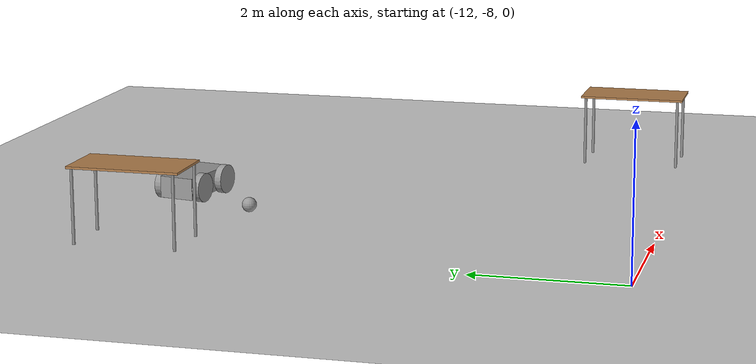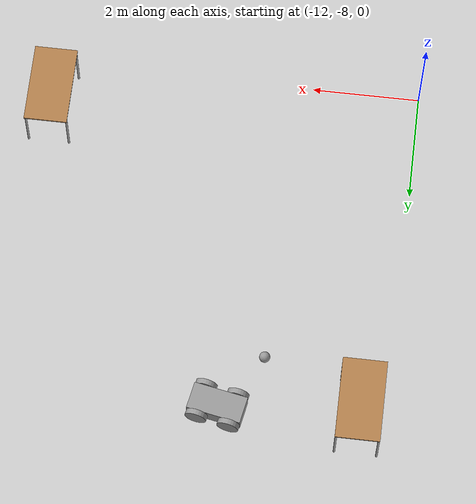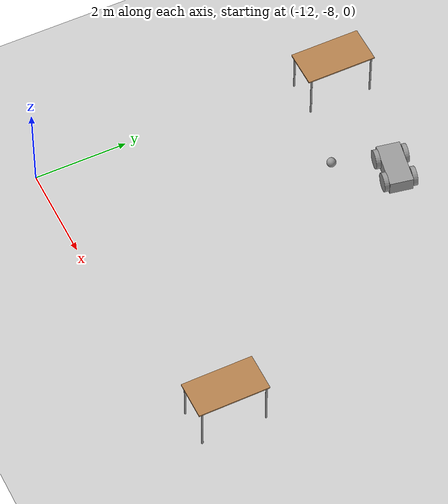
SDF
<sdf version="1.6">
 <world name="default">
  <model name="ground_plane">
   <static>1</static>
   <link name="link">
    <collision name="collision">
     <geometry><plane><normal>0 0 1</normal><size>100 100</size></plane></geometry>
     <surface><friction><ode><mu>100</mu><mu2>50</mu2></ode></friction></surface>
    </collision>
    <visual name="visual">
     <cast_shadows>0</cast_shadows>
     <geometry><plane><normal>0 0 1</normal><size>100 100</size></plane></geometry>
     <material>
      <script><uri>file://media/materials/scripts/gazebo.material</uri><name>Gazebo/Grey</name></script>
     </material>
    </visual>
   </link>
  </model>
  <model name="robot">
   <link name="link_0">
    <pose>0 0 1e-06 0 -0 0</pose>
    <inertial>
     <mass>1</mass>
     <inertia>
      <ixx>0.166667</ixx>
      <ixy>0</ixy>
      <ixz>0</ixz>
      <iyy>0.166667</iyy>
      <iyz>0</iyz>
      <izz>0.166667</izz>
     </inertia>
    </inertial>
    <visual name="visual">
     <geometry><box><size>1 0.5 0.3</size></box></geometry>
     <material>
      <lighting>1</lighting>
      <script><uri>file://media/materials/scripts/gazebo.material</uri><name>Gazebo/Grey</name></script>
      <shader type="pixel"><normal_map>__default__</normal_map></shader>
      <ambient>0.3 0.3 0.3 1</ambient>
      <diffuse>0.7 0.7 0.7 1</diffuse>
      <specular>0.01 0.01 0.01 1</specular>
      <emissive>0 0 0 1</emissive>
     </material>
    </visual>
    <collision name="collision">
     <geometry><box><size>1 0.5 0.3</size></box></geometry>
     <surface>
      <friction>
       <ode><mu>1</mu><mu2>1</mu2><fdir1>0 0 0</fdir1><slip1>0</slip1><slip2>0</slip2></ode>
       <torsional>
        <coefficient>1</coefficient>
        <patch_radius>0</patch_radius>
        <surface_radius>0</surface_radius>
        <use_patch_radius>1</use_patch_radius>
        <ode><slip>0</slip></ode>
       </torsional>
      </friction>
      <bounce><restitution_coefficient>0</restitution_coefficient><threshold>1e+06</threshold></bounce>
      <contact>
       <collide_without_contact>0</collide_without_contact>
       <collide_without_contact_bitmask>1</collide_without_contact_bitmask>
       <collide_bitmask>1</collide_bitmask>
       <ode>
        <soft_cfm>0</soft_cfm>
        <soft_erp>0.2</soft_erp>
        <kp>1e+13</kp>
        <kd>1</kd>
        <max_vel>0.01</max_vel>
        <min_depth>0</min_depth>
       </ode>
       <bullet>
        <split_impulse>1</split_impulse>
        <split_impulse_penetration_threshold>-0.01</split_impulse_penetration_threshold>
        <soft_cfm>0</soft_cfm>
        <soft_erp>0.2</soft_erp>
        <kp>1e+13</kp>
        <kd>1</kd>
       </bullet>
      </contact>
     </surface>
    </collision>
   </link>
   <link name="link_1">
    <pose>-0.3 -0.300019 -4e-06 1.5707 -0 0</pose>
    <inertial>
     <mass>1</mass>
     <inertia><ixx>0.145833</ixx><ixy>0</ixy><ixz>0</ixz><iyy>0.145833</iyy><iyz>0</iyz><izz>0.125</izz></inertia>
    </inertial>
    <visual name="visual">
     <geometry><cylinder><radius>0.2</radius><length>0.1</length></cylinder></geometry>
     <material>
      <lighting>1</lighting>
      <script><uri>file://media/materials/scripts/gazebo.material</uri><name>Gazebo/Grey</name></script>
      <shader type="pixel"><normal_map>__default__</normal_map></shader>
      <ambient>0.3 0.3 0.3 1</ambient>
      <diffuse>0.7 0.7 0.7 1</diffuse>
      <specular>0.01 0.01 0.01 1</specular>
      <emissive>0 0 0 1</emissive>
     </material>
    </visual>
    <collision name="collision">
     <geometry><cylinder><radius>0.2</radius><length>0.1</length></cylinder></geometry>
     <surface>
      <friction>
       <ode><mu>1</mu><mu2>1</mu2><fdir1>0 0 0</fdir1><slip1>0</slip1><slip2>0</slip2></ode>
       <torsional>
        <coefficient>1</coefficient>
        <patch_radius>0</patch_radius>
        <surface_radius>0</surface_radius>
        <use_patch_radius>1</use_patch_radius>
        <ode><slip>0</slip></ode>
       </torsional>
      </friction>
      <bounce><restitution_coefficient>0</restitution_coefficient><threshold>1e+06</threshold></bounce>
      <contact>
       <collide_without_contact>0</collide_without_contact>
       <collide_without_contact_bitmask>1</collide_without_contact_bitmask>
       <collide_bitmask>1</collide_bitmask>
       <ode>
        <soft_cfm>0</soft_cfm>
        <soft_erp>0.2</soft_erp>
        <kp>1e+13</kp>
        <kd>1</kd>
        <max_vel>0.01</max_vel>
        <min_depth>0</min_depth>
       </ode>
       <bullet>
        <split_impulse>1</split_impulse>
        <split_impulse_penetration_threshold>-0.01</split_impulse_penetration_threshold>
        <soft_cfm>0</soft_cfm>
        <soft_erp>0.2</soft_erp>
        <kp>1e+13</kp>
        <kd>1</kd>
       </bullet>
      </contact>
     </surface>
    </collision>
   </link>
   <link name="link_1_clone">
    <pose>-0.3 0.300019 1e-06 1.5707 -0 0</pose>
    <inertial>
     <mass>1</mass>
     <inertia><ixx>0.145833</ixx><ixy>0</ixy><ixz>0</ixz><iyy>0.145833</iyy><iyz>0</iyz><izz>0.125</izz></inertia>
    </inertial>
    <visual name="visual">
     <geometry><cylinder><radius>0.2</radius><length>0.1</length></cylinder></geometry>
     <material>
      <lighting>1</lighting>
      <script><uri>file://media/materials/scripts/gazebo.material</uri><name>Gazebo/Grey</name></script>
      <shader type="pixel"><normal_map>__default__</normal_map></shader>
      <ambient>0.3 0.3 0.3 1</ambient>
      <diffuse>0.7 0.7 0.7 1</diffuse>
      <specular>0.01 0.01 0.01 1</specular>
      <emissive>0 0 0 1</emissive>
     </material>
    </visual>
    <collision name="collision">
     <geometry><cylinder><radius>0.2</radius><length>0.1</length></cylinder></geometry>
     <surface>
      <friction>
       <ode><mu>1</mu><mu2>1</mu2><fdir1>0 0 0</fdir1><slip1>0</slip1><slip2>0</slip2></ode>
       <torsional>
        <coefficient>1</coefficient>
        <patch_radius>0</patch_radius>
        <surface_radius>0</surface_radius>
        <use_patch_radius>1</use_patch_radius>
        <ode><slip>0</slip></ode>
       </torsional>
      </friction>
      <bounce><restitution_coefficient>0</restitution_coefficient><threshold>1e+06</threshold></bounce>
      <contact>
       <collide_without_contact>0</collide_without_contact>
       <collide_without_contact_bitmask>1</collide_without_contact_bitmask>
       <collide_bitmask>1</collide_bitmask>
       <ode>
        <soft_cfm>0</soft_cfm>
        <soft_erp>0.2</soft_erp>
        <kp>1e+13</kp>
        <kd>1</kd>
        <max_vel>0.01</max_vel>
        <min_depth>0</min_depth>
       </ode>
       <bullet>
        <split_impulse>1</split_impulse>
        <split_impulse_penetration_threshold>-0.01</split_impulse_penetration_threshold>
        <soft_cfm>0</soft_cfm>
        <soft_erp>0.2</soft_erp>
        <kp>1e+13</kp>
        <kd>1</kd>
       </bullet>
      </contact>
     </surface>
    </collision>
   </link>
   <link name="link_1_clone_0">
    <pose>0.3 0.300019 1e-06 1.5707 -0 0</pose>
    <inertial>
     <mass>1</mass>
     <inertia><ixx>0.145833</ixx><ixy>0</ixy><ixz>0</ixz><iyy>0.145833</iyy><iyz>0</iyz><izz>0.125</izz></inertia>
    </inertial>
    <visual name="visual">
     <geometry><cylinder><radius>0.2</radius><length>0.1</length></cylinder></geometry>
     <material>
      <lighting>1</lighting>
      <script><uri>file://media/materials/scripts/gazebo.material</uri><name>Gazebo/Grey</name></script>
      <shader type="pixel"><normal_map>__default__</normal_map></shader>
      <ambient>0.3 0.3 0.3 1</ambient>
      <diffuse>0.7 0.7 0.7 1</diffuse>
      <specular>0.01 0.01 0.01 1</specular>
      <emissive>0 0 0 1</emissive>
     </material>
    </visual>
    <collision name="collision">
     <geometry><cylinder><radius>0.2</radius><length>0.1</length></cylinder></geometry>
     <surface>
      <friction>
       <ode><mu>1</mu><mu2>1</mu2><fdir1>0 0 0</fdir1><slip1>0</slip1><slip2>0</slip2></ode>
       <torsional>
        <coefficient>1</coefficient>
        <patch_radius>0</patch_radius>
        <surface_radius>0</surface_radius>
        <use_patch_radius>1</use_patch_radius>
        <ode><slip>0</slip></ode>
       </torsional>
      </friction>
      <bounce><restitution_coefficient>0</restitution_coefficient><threshold>1e+06</threshold></bounce>
      <contact>
       <collide_without_contact>0</collide_without_contact>
       <collide_without_contact_bitmask>1</collide_without_contact_bitmask>
       <collide_bitmask>1</collide_bitmask>
       <ode>
        <soft_cfm>0</soft_cfm>
        <soft_erp>0.2</soft_erp>
        <kp>1e+13</kp>
        <kd>1</kd>
        <max_vel>0.01</max_vel>
        <min_depth>0</min_depth>
       </ode>
       <bullet>
        <split_impulse>1</split_impulse>
        <split_impulse_penetration_threshold>-0.01</split_impulse_penetration_threshold>
        <soft_cfm>0</soft_cfm>
        <soft_erp>0.2</soft_erp>
        <kp>1e+13</kp>
        <kd>1</kd>
       </bullet>
      </contact>
     </surface>
    </collision>
   </link>
   <link name="link_1_clone_1">
    <pose>0.3 -0.300019 1e-06 1.5707 -0 0</pose>
    <inertial>
     <mass>1</mass>
     <inertia><ixx>0.145833</ixx><ixy>0</ixy><ixz>0</ixz><iyy>0.145833</iyy><iyz>0</iyz><izz>0.125</izz></inertia>
    </inertial>
    <visual name="visual">
     <geometry><cylinder><radius>0.2</radius><length>0.1</length></cylinder></geometry>
     <material>
      <lighting>1</lighting>
      <script><uri>file://media/materials/scripts/gazebo.material</uri><name>Gazebo/Grey</name></script>
      <shader type="pixel"><normal_map>__default__</normal_map></shader>
      <ambient>0.3 0.3 0.3 1</ambient>
      <diffuse>0.7 0.7 0.7 1</diffuse>
      <specular>0.01 0.01 0.01 1</specular>
      <emissive>0 0 0 1</emissive>
     </material>
    </visual>
    <collision name="collision">
     <geometry><cylinder><radius>0.2</radius><length>0.1</length></cylinder></geometry>
     <surface>
      <friction>
       <ode><mu>1</mu><mu2>1</mu2><fdir1>0 0 0</fdir1><slip1>0</slip1><slip2>0</slip2></ode>
       <torsional>
        <coefficient>1</coefficient>
        <patch_radius>0</patch_radius>
        <surface_radius>0</surface_radius>
        <use_patch_radius>1</use_patch_radius>
        <ode><slip>0</slip></ode>
       </torsional>
      </friction>
      <bounce><restitution_coefficient>0</restitution_coefficient><threshold>1e+06</threshold></bounce>
      <contact>
       <collide_without_contact>0</collide_without_contact>
       <collide_without_contact_bitmask>1</collide_without_contact_bitmask>
       <collide_bitmask>1</collide_bitmask>
       <ode>
        <soft_cfm>0</soft_cfm>
        <soft_erp>0.2</soft_erp>
        <kp>1e+13</kp>
        <kd>1</kd>
        <max_vel>0.01</max_vel>
        <min_depth>0</min_depth>
       </ode>
       <bullet>
        <split_impulse>1</split_impulse>
        <split_impulse_penetration_threshold>-0.01</split_impulse_penetration_threshold>
        <soft_cfm>0</soft_cfm>
        <soft_erp>0.2</soft_erp>
        <kp>1e+13</kp>
        <kd>1</kd>
       </bullet>
      </contact>
     </surface>
    </collision>
   </link>
   <joint name="link_0_JOINT_1" type="revolute">
    <parent>link_0</parent>
    <child>link_1_clone</child>
    <axis>
     <xyz>0 0 1</xyz>
     <use_parent_model_frame>0</use_parent_model_frame>
     <limit>
      <lower>-1.79769e+308</lower>
      <upper>1.79769e+308</upper>
      <effort>-1</effort>
      <velocity>-1</velocity>
     </limit>
     <dynamics>
      <spring_reference>0</spring_reference>
      <spring_stiffness>0</spring_stiffness>
      <damping>0</damping>
     </dynamics>
    </axis>
    <physics>
     <ode><limit><cfm>0</cfm><erp>0.2</erp></limit><suspension><cfm>0</cfm><erp>0.2</erp></suspension></ode>
    </physics>
   </joint>
   <joint name="link_0_JOINT_2" type="revolute">
    <parent>link_0</parent>
    <child>link_1</child>
    <axis>
     <xyz>0 0 1</xyz>
     <use_parent_model_frame>0</use_parent_model_frame>
     <limit>
      <lower>-1.79769e+308</lower>
      <upper>1.79769e+308</upper>
      <effort>-1</effort>
      <velocity>-1</velocity>
     </limit>
     <dynamics>
      <spring_reference>0</spring_reference>
      <spring_stiffness>0</spring_stiffness>
      <damping>0</damping>
     </dynamics>
    </axis>
    <physics>
     <ode><limit><cfm>0</cfm><erp>0.2</erp></limit><suspension><cfm>0</cfm><erp>0.2</erp></suspension></ode>
    </physics>
   </joint>
   <joint name="link_0_JOINT_3" type="revolute">
    <parent>link_0</parent>
    <child>link_1_clone_1</child>
    <axis>
     <xyz>0 0 1</xyz>
     <use_parent_model_frame>0</use_parent_model_frame>
     <limit>
      <lower>-1.79769e+308</lower>
      <upper>1.79769e+308</upper>
      <effort>-1</effort>
      <velocity>-1</velocity>
     </limit>
     <dynamics>
      <spring_reference>0</spring_reference>
      <spring_stiffness>0</spring_stiffness>
      <damping>0</damping>
     </dynamics>
    </axis>
    <physics>
     <ode><limit><cfm>0</cfm><erp>0.2</erp></limit><suspension><cfm>0</cfm><erp>0.2</erp></suspension></ode>
    </physics>
   </joint>
   <joint name="link_0_JOINT_4" type="revolute">
    <parent>link_0</parent>
    <child>link_1</child>
    <axis>
     <xyz>0 0 1</xyz>
     <use_parent_model_frame>0</use_parent_model_frame>
     <limit>
      <lower>-1.79769e+308</lower>
      <upper>1.79769e+308</upper>
      <effort>-1</effort>
      <velocity>-1</velocity>
     </limit>
     <dynamics>
      <spring_reference>0</spring_reference>
      <spring_stiffness>0</spring_stiffness>
      <damping>0</damping>
     </dynamics>
    </axis>
    <physics>
     <ode><limit><cfm>0</cfm><erp>0.2</erp></limit><suspension><cfm>0</cfm><erp>0.2</erp></suspension></ode>
    </physics>
   </joint>
   <joint name="link_0_JOINT_5" type="revolute">
    <parent>link_0</parent>
    <child>link_1_clone_1</child>
    <axis>
     <xyz>0 0 1</xyz>
     <use_parent_model_frame>0</use_parent_model_frame>
     <limit>
      <lower>-1.79769e+308</lower>
      <upper>1.79769e+308</upper>
      <effort>-1</effort>
      <velocity>-1</velocity>
     </limit>
     <dynamics>
      <spring_reference>0</spring_reference>
      <spring_stiffness>0</spring_stiffness>
      <damping>0</damping>
     </dynamics>
    </axis>
    <physics>
     <ode><limit><cfm>0</cfm><erp>0.2</erp></limit><suspension><cfm>0</cfm><erp>0.2</erp></suspension></ode>
    </physics>
   </joint>
   <joint name="link_0_JOINT_6" type="revolute">
    <parent>link_0</parent>
    <child>link_1_clone</child>
    <axis>
     <xyz>0 0 1</xyz>
     <use_parent_model_frame>0</use_parent_model_frame>
     <limit>
      <lower>-1.79769e+308</lower>
      <upper>1.79769e+308</upper>
      <effort>-1</effort>
      <velocity>-1</velocity>
     </limit>
     <dynamics>
      <spring_reference>0</spring_reference>
      <spring_stiffness>0</spring_stiffness>
      <damping>0</damping>
     </dynamics>
    </axis>
    <physics>
     <ode><limit><cfm>0</cfm><erp>0.2</erp></limit><suspension><cfm>0</cfm><erp>0.2</erp></suspension></ode>
    </physics>
   </joint>
   <joint name="link_0_JOINT_7" type="revolute">
    <parent>link_0</parent>
    <child>link_1_clone_0</child>
    <axis>
     <xyz>0 0 1</xyz>
     <use_parent_model_frame>0</use_parent_model_frame>
     <limit>
      <lower>-1.79769e+308</lower>
      <upper>1.79769e+308</upper>
      <effort>-1</effort>
      <velocity>-1</velocity>
     </limit>
     <dynamics>
      <spring_reference>0</spring_reference>
      <spring_stiffness>0</spring_stiffness>
      <damping>0</damping>
     </dynamics>
    </axis>
    <physics>
     <ode><limit><cfm>0</cfm><erp>0.2</erp></limit><suspension><cfm>0</cfm><erp>0.2</erp></suspension></ode>
    </physics>
   </joint>
   <static>0</static>
   <pose>-8.92948 -1.41824 0.200006 -0 9e-06 -0.188568</pose>
  </model>
  <model name="table_clone_0">
   <link name="link">
    <pose>0 0 0 0 -0 1.5707</pose>
    <inertial>
     <mass>1</mass>
     <inertia><ixx>1</ixx><ixy>0</ixy><ixz>0</ixz><iyy>1</iyy><iyz>0</iyz><izz>1</izz></inertia>
    </inertial>
    <visual name="back_right_leg">
     <pose>-0.68 -0.38 0.5 0 -0 0</pose>
     <geometry><cylinder><radius>0.02</radius><length>1</length></cylinder></geometry>
     <material>
      <script><uri>file://media/materials/scripts/gazebo.material</uri><name>Gazebo/Grey</name></script>
      <shader type="pixel"><normal_map>__default__</normal_map></shader>
      <ambient>0.3 0.3 0.3 1</ambient>
      <diffuse>0.7 0.7 0.7 1</diffuse>
      <specular>0.01 0.01 0.01 1</specular>
      <emissive>0 0 0 1</emissive>
     </material>
    </visual>
    <visual name="front_left_leg">
     <pose>0.68 0.38 0.5 0 -0 0</pose>
     <geometry><cylinder><radius>0.02</radius><length>1</length></cylinder></geometry>
     <material>
      <script><uri>file://media/materials/scripts/gazebo.material</uri><name>Gazebo/Grey</name></script>
      <shader type="pixel"><normal_map>__default__</normal_map></shader>
      <ambient>0.3 0.3 0.3 1</ambient>
      <diffuse>0.7 0.7 0.7 1</diffuse>
      <specular>0.01 0.01 0.01 1</specular>
      <emissive>0 0 0 1</emissive>
     </material>
    </visual>
    <visual name="visual1">
     <pose>0 0 1 0 -0 0</pose>
     <geometry><box><size>1.5 0.8 0.03</size></box></geometry>
     <material>
      <script><uri>file://media/materials/scripts/gazebo.material</uri><name>Gazebo/Wood</name></script>
      <shader type="pixel"><normal_map>__default__</normal_map></shader>
      <ambient>1 1 1 1</ambient>
      <diffuse>1 1 1 1</diffuse>
      <specular>0.2 0.2 0.2 1</specular>
      <emissive>0 0 0 1</emissive>
     </material>
    </visual>
    <visual name="back_left_leg">
     <pose>-0.68 0.38 0.5 0 -0 0</pose>
     <geometry><cylinder><radius>0.02</radius><length>1</length></cylinder></geometry>
     <material>
      <script><uri>file://media/materials/scripts/gazebo.material</uri><name>Gazebo/Grey</name></script>
      <shader type="pixel"><normal_map>__default__</normal_map></shader>
      <ambient>0.3 0.3 0.3 1</ambient>
      <diffuse>0.7 0.7 0.7 1</diffuse>
      <specular>0.01 0.01 0.01 1</specular>
      <emissive>0 0 0 1</emissive>
     </material>
    </visual>
    <visual name="front_right_leg">
     <pose>0.68 -0.38 0.5 0 -0 0</pose>
     <geometry><cylinder><radius>0.02</radius><length>1</length></cylinder></geometry>
     <material>
      <script><uri>file://media/materials/scripts/gazebo.material</uri><name>Gazebo/Grey</name></script>
      <shader type="pixel"><normal_map>__default__</normal_map></shader>
      <ambient>0.3 0.3 0.3 1</ambient>
      <diffuse>0.7 0.7 0.7 1</diffuse>
      <specular>0.01 0.01 0.01 1</specular>
      <emissive>0 0 0 1</emissive>
     </material>
    </visual>
    <collision name="front_right_leg">
     <pose>0.68 -0.38 0.5 0 -0 0</pose>
     <geometry><cylinder><radius>0.02</radius><length>1</length></cylinder></geometry>
     <surface>
      <friction>
       <ode><mu>1</mu><mu2>1</mu2><fdir1>0 0 0</fdir1><slip1>0</slip1><slip2>0</slip2></ode>
       <torsional>
        <coefficient>1</coefficient>
        <patch_radius>0</patch_radius>
        <surface_radius>0</surface_radius>
        <use_patch_radius>1</use_patch_radius>
        <ode><slip>0</slip></ode>
       </torsional>
      </friction>
      <bounce><restitution_coefficient>0</restitution_coefficient><threshold>1e+06</threshold></bounce>
      <contact>
       <collide_without_contact>0</collide_without_contact>
       <collide_without_contact_bitmask>1</collide_without_contact_bitmask>
       <collide_bitmask>1</collide_bitmask>
       <ode>
        <soft_cfm>0</soft_cfm>
        <soft_erp>0.2</soft_erp>
        <kp>1e+13</kp>
        <kd>1</kd>
        <max_vel>0.01</max_vel>
        <min_depth>0</min_depth>
       </ode>
       <bullet>
        <split_impulse>1</split_impulse>
        <split_impulse_penetration_threshold>-0.01</split_impulse_penetration_threshold>
        <soft_cfm>0</soft_cfm>
        <soft_erp>0.2</soft_erp>
        <kp>1e+13</kp>
        <kd>1</kd>
       </bullet>
      </contact>
     </surface>
    </collision>
    <collision name="surface">
     <pose>0 0 1 0 -0 0</pose>
     <geometry><box><size>1.5 0.8 0.03</size></box></geometry>
     <surface>
      <friction>
       <ode><mu>0.6</mu><mu2>0.6</mu2><fdir1>0 0 0</fdir1><slip1>0</slip1><slip2>0</slip2></ode>
       <torsional>
        <coefficient>1</coefficient>
        <patch_radius>0</patch_radius>
        <surface_radius>0</surface_radius>
        <use_patch_radius>1</use_patch_radius>
        <ode><slip>0</slip></ode>
       </torsional>
      </friction>
      <bounce><restitution_coefficient>0</restitution_coefficient><threshold>1e+06</threshold></bounce>
      <contact>
       <collide_without_contact>0</collide_without_contact>
       <collide_without_contact_bitmask>1</collide_without_contact_bitmask>
       <collide_bitmask>1</collide_bitmask>
       <ode>
        <soft_cfm>0</soft_cfm>
        <soft_erp>0.2</soft_erp>
        <kp>1e+13</kp>
        <kd>1</kd>
        <max_vel>0.01</max_vel>
        <min_depth>0</min_depth>
       </ode>
       <bullet>
        <split_impulse>1</split_impulse>
        <split_impulse_penetration_threshold>-0.01</split_impulse_penetration_threshold>
        <soft_cfm>0</soft_cfm>
        <soft_erp>0.2</soft_erp>
        <kp>1e+13</kp>
        <kd>1</kd>
       </bullet>
      </contact>
     </surface>
    </collision>
    <collision name="front_left_leg">
     <pose>0.68 0.38 0.5 0 -0 0</pose>
     <geometry><cylinder><radius>0.02</radius><length>1</length></cylinder></geometry>
     <surface>
      <friction>
       <ode><mu>1</mu><mu2>1</mu2><fdir1>0 0 0</fdir1><slip1>0</slip1><slip2>0</slip2></ode>
       <torsional>
        <coefficient>1</coefficient>
        <patch_radius>0</patch_radius>
        <surface_radius>0</surface_radius>
        <use_patch_radius>1</use_patch_radius>
        <ode><slip>0</slip></ode>
       </torsional>
      </friction>
      <bounce><restitution_coefficient>0</restitution_coefficient><threshold>1e+06</threshold></bounce>
      <contact>
       <collide_without_contact>0</collide_without_contact>
       <collide_without_contact_bitmask>1</collide_without_contact_bitmask>
       <collide_bitmask>1</collide_bitmask>
       <ode>
        <soft_cfm>0</soft_cfm>
        <soft_erp>0.2</soft_erp>
        <kp>1e+13</kp>
        <kd>1</kd>
        <max_vel>0.01</max_vel>
        <min_depth>0</min_depth>
       </ode>
       <bullet>
        <split_impulse>1</split_impulse>
        <split_impulse_penetration_threshold>-0.01</split_impulse_penetration_threshold>
        <soft_cfm>0</soft_cfm>
        <soft_erp>0.2</soft_erp>
        <kp>1e+13</kp>
        <kd>1</kd>
       </bullet>
      </contact>
     </surface>
    </collision>
    <collision name="back_left_leg">
     <pose>-0.68 0.38 0.5 0 -0 0</pose>
     <geometry><cylinder><radius>0.02</radius><length>1</length></cylinder></geometry>
     <surface>
      <friction>
       <ode><mu>1</mu><mu2>1</mu2><fdir1>0 0 0</fdir1><slip1>0</slip1><slip2>0</slip2></ode>
       <torsional>
        <coefficient>1</coefficient>
        <patch_radius>0</patch_radius>
        <surface_radius>0</surface_radius>
        <use_patch_radius>1</use_patch_radius>
        <ode><slip>0</slip></ode>
       </torsional>
      </friction>
      <bounce><restitution_coefficient>0</restitution_coefficient><threshold>1e+06</threshold></bounce>
      <contact>
       <collide_without_contact>0</collide_without_contact>
       <collide_without_contact_bitmask>1</collide_without_contact_bitmask>
       <collide_bitmask>1</collide_bitmask>
       <ode>
        <soft_cfm>0</soft_cfm>
        <soft_erp>0.2</soft_erp>
        <kp>1e+13</kp>
        <kd>1</kd>
        <max_vel>0.01</max_vel>
        <min_depth>0</min_depth>
       </ode>
       <bullet>
        <split_impulse>1</split_impulse>
        <split_impulse_penetration_threshold>-0.01</split_impulse_penetration_threshold>
        <soft_cfm>0</soft_cfm>
        <soft_erp>0.2</soft_erp>
        <kp>1e+13</kp>
        <kd>1</kd>
       </bullet>
      </contact>
     </surface>
    </collision>
    <collision name="back_right_leg">
     <pose>-0.68 -0.38 0.5 0 -0 0</pose>
     <geometry><cylinder><radius>0.02</radius><length>1</length></cylinder></geometry>
     <surface>
      <friction>
       <ode><mu>1</mu><mu2>1</mu2><fdir1>0 0 0</fdir1><slip1>0</slip1><slip2>0</slip2></ode>
       <torsional>
        <coefficient>1</coefficient>
        <patch_radius>0</patch_radius>
        <surface_radius>0</surface_radius>
        <use_patch_radius>1</use_patch_radius>
        <ode><slip>0</slip></ode>
       </torsional>
      </friction>
      <bounce><restitution_coefficient>0</restitution_coefficient><threshold>1e+06</threshold></bounce>
      <contact>
       <collide_without_contact>0</collide_without_contact>
       <collide_without_contact_bitmask>1</collide_without_contact_bitmask>
       <collide_bitmask>1</collide_bitmask>
       <ode>
        <soft_cfm>0</soft_cfm>
        <soft_erp>0.2</soft_erp>
        <kp>1e+13</kp>
        <kd>1</kd>
        <max_vel>0.01</max_vel>
        <min_depth>0</min_depth>
       </ode>
       <bullet>
        <split_impulse>1</split_impulse>
        <split_impulse_penetration_threshold>-0.01</split_impulse_penetration_threshold>
        <soft_cfm>0</soft_cfm>
        <soft_erp>0.2</soft_erp>
        <kp>1e+13</kp>
        <kd>1</kd>
       </bullet>
      </contact>
     </surface>
    </collision>
   </link>
   <static>1</static>
   <pose>-5.15446 -7.04814 0 0 -0 0</pose>
  </model>
  <model name="table_clone_0_clone_0">
   <link name="link">
    <pose>0 0 0 0 -0 1.5707</pose>
    <inertial>
     <mass>1</mass>
     <inertia><ixx>1</ixx><ixy>0</ixy><ixz>0</ixz><iyy>1</iyy><iyz>0</iyz><izz>1</izz></inertia>
    </inertial>
    <visual name="back_right_leg">
     <pose>-0.68 -0.38 0.5 0 -0 0</pose>
     <geometry><cylinder><radius>0.02</radius><length>1</length></cylinder></geometry>
     <material>
      <script><uri>file://media/materials/scripts/gazebo.material</uri><name>Gazebo/Grey</name></script>
      <shader type="pixel"><normal_map>__default__</normal_map></shader>
      <ambient>0.3 0.3 0.3 1</ambient>
      <diffuse>0.7 0.7 0.7 1</diffuse>
      <specular>0.01 0.01 0.01 1</specular>
      <emissive>0 0 0 1</emissive>
     </material>
    </visual>
    <visual name="front_left_leg">
     <pose>0.68 0.38 0.5 0 -0 0</pose>
     <geometry><cylinder><radius>0.02</radius><length>1</length></cylinder></geometry>
     <material>
      <script><uri>file://media/materials/scripts/gazebo.material</uri><name>Gazebo/Grey</name></script>
      <shader type="pixel"><normal_map>__default__</normal_map></shader>
      <ambient>0.3 0.3 0.3 1</ambient>
      <diffuse>0.7 0.7 0.7 1</diffuse>
      <specular>0.01 0.01 0.01 1</specular>
      <emissive>0 0 0 1</emissive>
     </material>
    </visual>
    <visual name="visual1">
     <pose>0 0 1 0 -0 0</pose>
     <geometry><box><size>1.5 0.8 0.03</size></box></geometry>
     <material>
      <script><uri>file://media/materials/scripts/gazebo.material</uri><name>Gazebo/Wood</name></script>
      <shader type="pixel"><normal_map>__default__</normal_map></shader>
      <ambient>1 1 1 1</ambient>
      <diffuse>1 1 1 1</diffuse>
      <specular>0.2 0.2 0.2 1</specular>
      <emissive>0 0 0 1</emissive>
     </material>
    </visual>
    <visual name="back_left_leg">
     <pose>-0.68 0.38 0.5 0 -0 0</pose>
     <geometry><cylinder><radius>0.02</radius><length>1</length></cylinder></geometry>
     <material>
      <script><uri>file://media/materials/scripts/gazebo.material</uri><name>Gazebo/Grey</name></script>
      <shader type="pixel"><normal_map>__default__</normal_map></shader>
      <ambient>0.3 0.3 0.3 1</ambient>
      <diffuse>0.7 0.7 0.7 1</diffuse>
      <specular>0.01 0.01 0.01 1</specular>
      <emissive>0 0 0 1</emissive>
     </material>
    </visual>
    <visual name="front_right_leg">
     <pose>0.68 -0.38 0.5 0 -0 0</pose>
     <geometry><cylinder><radius>0.02</radius><length>1</length></cylinder></geometry>
     <material>
      <script><uri>file://media/materials/scripts/gazebo.material</uri><name>Gazebo/Grey</name></script>
      <shader type="pixel"><normal_map>__default__</normal_map></shader>
      <ambient>0.3 0.3 0.3 1</ambient>
      <diffuse>0.7 0.7 0.7 1</diffuse>
      <specular>0.01 0.01 0.01 1</specular>
      <emissive>0 0 0 1</emissive>
     </material>
    </visual>
    <collision name="front_right_leg">
     <pose>0.68 -0.38 0.5 0 -0 0</pose>
     <geometry><cylinder><radius>0.02</radius><length>1</length></cylinder></geometry>
     <surface>
      <friction>
       <ode><mu>1</mu><mu2>1</mu2><fdir1>0 0 0</fdir1><slip1>0</slip1><slip2>0</slip2></ode>
       <torsional>
        <coefficient>1</coefficient>
        <patch_radius>0</patch_radius>
        <surface_radius>0</surface_radius>
        <use_patch_radius>1</use_patch_radius>
        <ode><slip>0</slip></ode>
       </torsional>
      </friction>
      <bounce><restitution_coefficient>0</restitution_coefficient><threshold>1e+06</threshold></bounce>
      <contact>
       <collide_without_contact>0</collide_without_contact>
       <collide_without_contact_bitmask>1</collide_without_contact_bitmask>
       <collide_bitmask>1</collide_bitmask>
       <ode>
        <soft_cfm>0</soft_cfm>
        <soft_erp>0.2</soft_erp>
        <kp>1e+13</kp>
        <kd>1</kd>
        <max_vel>0.01</max_vel>
        <min_depth>0</min_depth>
       </ode>
       <bullet>
        <split_impulse>1</split_impulse>
        <split_impulse_penetration_threshold>-0.01</split_impulse_penetration_threshold>
        <soft_cfm>0</soft_cfm>
        <soft_erp>0.2</soft_erp>
        <kp>1e+13</kp>
        <kd>1</kd>
       </bullet>
      </contact>
     </surface>
    </collision>
    <collision name="surface">
     <pose>0 0 1 0 -0 0</pose>
     <geometry><box><size>1.5 0.8 0.03</size></box></geometry>
     <surface>
      <friction>
       <ode><mu>0.6</mu><mu2>0.6</mu2><fdir1>0 0 0</fdir1><slip1>0</slip1><slip2>0</slip2></ode>
       <torsional>
        <coefficient>1</coefficient>
        <patch_radius>0</patch_radius>
        <surface_radius>0</surface_radius>
        <use_patch_radius>1</use_patch_radius>
        <ode><slip>0</slip></ode>
       </torsional>
      </friction>
      <bounce><restitution_coefficient>0</restitution_coefficient><threshold>1e+06</threshold></bounce>
      <contact>
       <collide_without_contact>0</collide_without_contact>
       <collide_without_contact_bitmask>1</collide_without_contact_bitmask>
       <collide_bitmask>1</collide_bitmask>
       <ode>
        <soft_cfm>0</soft_cfm>
        <soft_erp>0.2</soft_erp>
        <kp>1e+13</kp>
        <kd>1</kd>
        <max_vel>0.01</max_vel>
        <min_depth>0</min_depth>
       </ode>
       <bullet>
        <split_impulse>1</split_impulse>
        <split_impulse_penetration_threshold>-0.01</split_impulse_penetration_threshold>
        <soft_cfm>0</soft_cfm>
        <soft_erp>0.2</soft_erp>
        <kp>1e+13</kp>
        <kd>1</kd>
       </bullet>
      </contact>
     </surface>
    </collision>
    <collision name="front_left_leg">
     <pose>0.68 0.38 0.5 0 -0 0</pose>
     <geometry><cylinder><radius>0.02</radius><length>1</length></cylinder></geometry>
     <surface>
      <friction>
       <ode><mu>1</mu><mu2>1</mu2><fdir1>0 0 0</fdir1><slip1>0</slip1><slip2>0</slip2></ode>
       <torsional>
        <coefficient>1</coefficient>
        <patch_radius>0</patch_radius>
        <surface_radius>0</surface_radius>
        <use_patch_radius>1</use_patch_radius>
        <ode><slip>0</slip></ode>
       </torsional>
      </friction>
      <bounce><restitution_coefficient>0</restitution_coefficient><threshold>1e+06</threshold></bounce>
      <contact>
       <collide_without_contact>0</collide_without_contact>
       <collide_without_contact_bitmask>1</collide_without_contact_bitmask>
       <collide_bitmask>1</collide_bitmask>
       <ode>
        <soft_cfm>0</soft_cfm>
        <soft_erp>0.2</soft_erp>
        <kp>1e+13</kp>
        <kd>1</kd>
        <max_vel>0.01</max_vel>
        <min_depth>0</min_depth>
       </ode>
       <bullet>
        <split_impulse>1</split_impulse>
        <split_impulse_penetration_threshold>-0.01</split_impulse_penetration_threshold>
        <soft_cfm>0</soft_cfm>
        <soft_erp>0.2</soft_erp>
        <kp>1e+13</kp>
        <kd>1</kd>
       </bullet>
      </contact>
     </surface>
    </collision>
    <collision name="back_left_leg">
     <pose>-0.68 0.38 0.5 0 -0 0</pose>
     <geometry><cylinder><radius>0.02</radius><length>1</length></cylinder></geometry>
     <surface>
      <friction>
       <ode><mu>1</mu><mu2>1</mu2><fdir1>0 0 0</fdir1><slip1>0</slip1><slip2>0</slip2></ode>
       <torsional>
        <coefficient>1</coefficient>
        <patch_radius>0</patch_radius>
        <surface_radius>0</surface_radius>
        <use_patch_radius>1</use_patch_radius>
        <ode><slip>0</slip></ode>
       </torsional>
      </friction>
      <bounce><restitution_coefficient>0</restitution_coefficient><threshold>1e+06</threshold></bounce>
      <contact>
       <collide_without_contact>0</collide_without_contact>
       <collide_without_contact_bitmask>1</collide_without_contact_bitmask>
       <collide_bitmask>1</collide_bitmask>
       <ode>
        <soft_cfm>0</soft_cfm>
        <soft_erp>0.2</soft_erp>
        <kp>1e+13</kp>
        <kd>1</kd>
        <max_vel>0.01</max_vel>
        <min_depth>0</min_depth>
       </ode>
       <bullet>
        <split_impulse>1</split_impulse>
        <split_impulse_penetration_threshold>-0.01</split_impulse_penetration_threshold>
        <soft_cfm>0</soft_cfm>
        <soft_erp>0.2</soft_erp>
        <kp>1e+13</kp>
        <kd>1</kd>
       </bullet>
      </contact>
     </surface>
    </collision>
    <collision name="back_right_leg">
     <pose>-0.68 -0.38 0.5 0 -0 0</pose>
     <geometry><cylinder><radius>0.02</radius><length>1</length></cylinder></geometry>
     <surface>
      <friction>
       <ode><mu>1</mu><mu2>1</mu2><fdir1>0 0 0</fdir1><slip1>0</slip1><slip2>0</slip2></ode>
       <torsional>
        <coefficient>1</coefficient>
        <patch_radius>0</patch_radius>
        <surface_radius>0</surface_radius>
        <use_patch_radius>1</use_patch_radius>
        <ode><slip>0</slip></ode>
       </torsional>
      </friction>
      <bounce><restitution_coefficient>0</restitution_coefficient><threshold>1e+06</threshold></bounce>
      <contact>
       <collide_without_contact>0</collide_without_contact>
       <collide_without_contact_bitmask>1</collide_without_contact_bitmask>
       <collide_bitmask>1</collide_bitmask>
       <ode>
        <soft_cfm>0</soft_cfm>
        <soft_erp>0.2</soft_erp>
        <kp>1e+13</kp>
        <kd>1</kd>
        <max_vel>0.01</max_vel>
        <min_depth>0</min_depth>
       </ode>
       <bullet>
        <split_impulse>1</split_impulse>
        <split_impulse_penetration_threshold>-0.01</split_impulse_penetration_threshold>
        <soft_cfm>0</soft_cfm>
        <soft_erp>0.2</soft_erp>
        <kp>1e+13</kp>
        <kd>1</kd>
       </bullet>
      </contact>
     </surface>
    </collision>
   </link>
   <static>1</static>
   <pose>-11.4789 -1.54167 0 0 -0 0</pose>
  </model>
  <model name="my_ball">
   <link name="link_0">
    <inertial>
     <mass>1</mass>
     <inertia><ixx>0.1</ixx><ixy>0</ixy><ixz>0</ixz><iyy>0.1</iyy><iyz>0</iyz><izz>0.1</izz></inertia>
    </inertial>
    <visual name="visual">
     <geometry><sphere><radius>0.1</radius></sphere></geometry>
     <material>
      <lighting>1</lighting>
      <script><uri>file://media/materials/scripts/gazebo.material</uri><name>Gazebo/Grey</name></script>
      <shader type="pixel"><normal_map>__default__</normal_map></shader>
      <ambient>1 1 1 1</ambient>
      <diffuse>1 1 1 1</diffuse>
      <specular>1 1 1 1</specular>
      <emissive>1 1 1 1</emissive>
     </material>
    </visual>
    <collision name="collision">
     <geometry><sphere><radius>0.1</radius></sphere></geometry>
     <surface>
      <friction>
       <ode><mu>1</mu><mu2>1</mu2><fdir1>0 0 0</fdir1><slip1>0</slip1><slip2>0</slip2></ode>
       <torsional>
        <coefficient>1</coefficient>
        <patch_radius>0</patch_radius>
        <surface_radius>0</surface_radius>
        <use_patch_radius>1</use_patch_radius>
        <ode><slip>0</slip></ode>
       </torsional>
      </friction>
      <bounce><restitution_coefficient>0</restitution_coefficient><threshold>1e+06</threshold></bounce>
      <contact>
       <collide_without_contact>0</collide_without_contact>
       <collide_without_contact_bitmask>1</collide_without_contact_bitmask>
       <collide_bitmask>1</collide_bitmask>
       <ode>
        <soft_cfm>0</soft_cfm>
        <soft_erp>0.2</soft_erp>
        <kp>1e+13</kp>
        <kd>1</kd>
        <max_vel>0.01</max_vel>
        <min_depth>0</min_depth>
       </ode>
       <bullet>
        <split_impulse>1</split_impulse>
        <split_impulse_penetration_threshold>-0.01</split_impulse_penetration_threshold>
        <soft_cfm>0</soft_cfm>
        <soft_erp>0.2</soft_erp>
        <kp>1e+13</kp>
        <kd>1</kd>
       </bullet>
      </contact>
     </surface>
    </collision>
   </link>
   <static>0</static>
   <pose>-9.67497 -2.47004 0.1 0 -0 0</pose>
  </model>
 </world>
</sdf>
